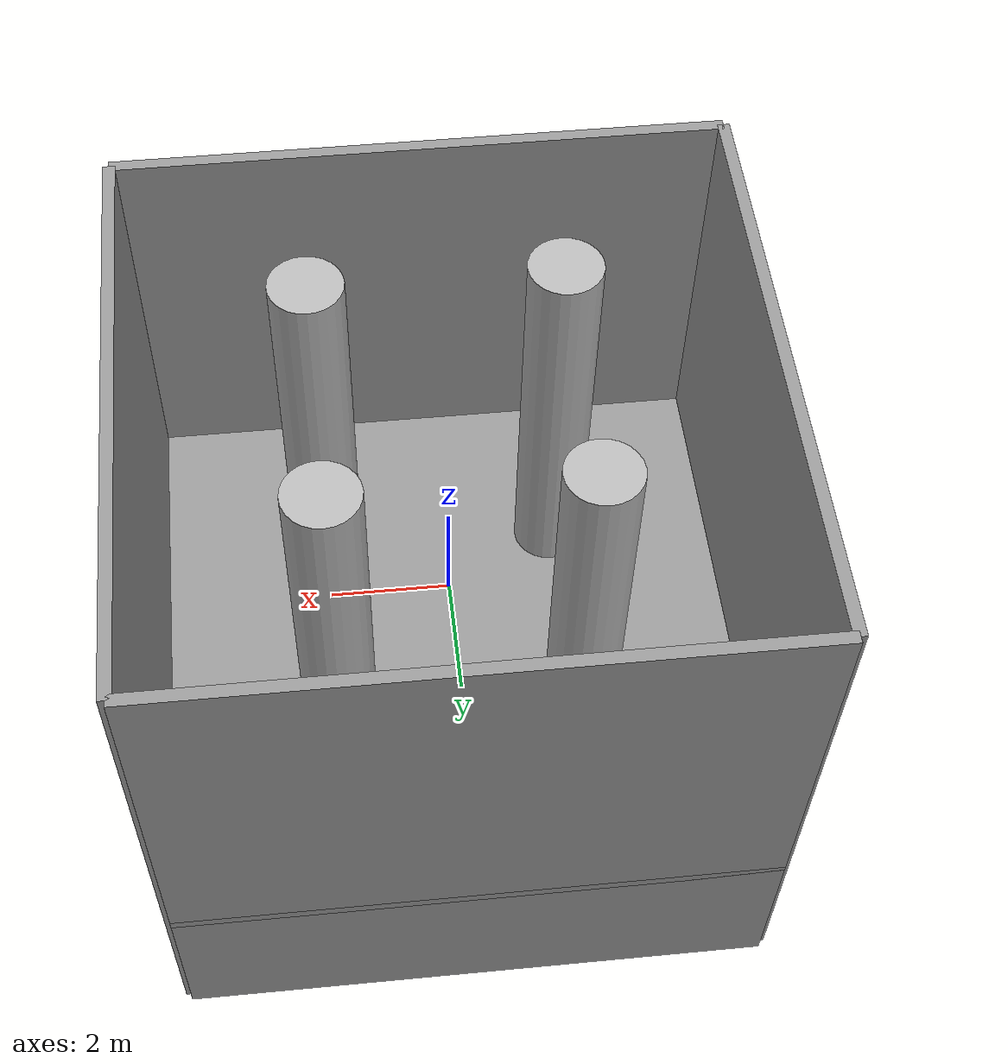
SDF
<sdf version="1.4">
 <world name="default">
  <plugin name="ros_interface_plugin" filename="librotors_gazebo_ros_interface_plugin.so"/>
  <spherical_coordinates>
   <surface_model>EARTH_WGS84</surface_model>
   <latitude_deg>47.3667</latitude_deg>
   <longitude_deg>8.5500</longitude_deg>
   <elevation>500.0</elevation>
   <heading_deg>0</heading_deg>
  </spherical_coordinates>
  <physics type="ode">
   <ode>
    <solver><type>quick</type><iters>1000</iters><sor>1.3</sor></solver>
    <constraints>
     <cfm>0</cfm>
     <erp>0.2</erp>
     <contact_max_correcting_vel>100</contact_max_correcting_vel>
     <contact_surface_layer>0.001</contact_surface_layer>
    </constraints>
   </ode>
   <max_step_size>0.01</max_step_size>
   <real_time_factor>1</real_time_factor>
   <real_time_update_rate>100</real_time_update_rate>
   <gravity>0 0 -9.8</gravity>
  </physics>
  <light type="directional" name="sun1">
   <pose>50 0 150 0 0 0</pose>
   <diffuse>1 1 1 1</diffuse>
   <specular>.1 .1 .1 1</specular>
   <direction>0.3 0.3 -1</direction>
   <cast_shadows>false</cast_shadows>
  </light>
  <light type="directional" name="sun_diffuse">
   <pose>-50 0 -150 0 0 0</pose>
   <diffuse>0.6 0.6 0.6 1</diffuse>
   <specular>0 0 0 1</specular>
   <direction>-0.3 -0.3 -1</direction>
   <cast_shadows>false</cast_shadows>
  </light>
  <scene>
   <ambient>0.01 0.01 0.01 1.0</ambient>
   <sky><clouds><speed>12</speed></clouds></sky>
   <shadows>1</shadows>
   <fog>
    <color>0.1 0.2 0.3 1.0</color>
    <type>linear</type>
    <density>0.1</density>
    <start>10</start>
    <end>40</end>
   </fog>
  </scene>
  <include><uri>model://grey_wall</uri><pose>0 -5.0 -1.0 0 0 0</pose><name>grey_wall_0</name></include>
  <include><uri>model://grey_wall</uri><pose>0 5.0 -1.0 0 0 0</pose><name>grey_wall_1</name></include>
  <include>
   <uri>model://grey_wall</uri>
   <pose>-5.0 0.0 -1.0 0 0 1.57079632679</pose>
   <name>grey_wall_2</name>
  </include>
  <include>
   <uri>model://grey_wall</uri>
   <pose>5.0 0.0 -1.0 0 0 1.57079632679</pose>
   <name>grey_wall_3</name>
  </include>
  <include>
   <uri>model://grey_wall</uri>
   <pose>0.0 1.5 -1.5 1.57079632679 0 0</pose>
   <name>grey_wall_4</name>
  </include>
  <include><uri>model://obstacle_1</uri><pose>2.0 2.0 2. 0.0 0 0</pose><name>obstacle_1</name></include>
  <include><uri>model://obstacle_1</uri><pose>-2.0 -2.0 2. 0.0 0 0</pose><name>obstacle_2</name></include>
  <include><uri>model://obstacle_1</uri><pose>2.0 -2.0 2. 0.0 0 0</pose><name>obstacle_3</name></include>
  <include><uri>model://obstacle_1</uri><pose>-2.0 2.0 2. 0.0 0 0</pose><name>obstacle_4</name></include>
  <plugin name="underwater_current_plugin" filename="libuuv_underwater_current_ros_plugin.so">
   <namespace>hydrodynamics</namespace>
   <constant_current>
    <topic>current_velocity</topic>
    <velocity><mean>0</mean><min>0</min><max>5</max><mu>0.0</mu><noiseAmp>0.0</noiseAmp></velocity>
    <horizontal_angle>
     <mean>0</mean>
     <min>-3.141592653589793238</min>
     <max>3.141592653589793238</max>
     <mu>0.0</mu>
     <noiseAmp>0.0</noiseAmp>
    </horizontal_angle>
    <vertical_angle>
     <mean>0</mean>
     <min>-3.141592653589793238</min>
     <max>3.141592653589793238</max>
     <mu>0.0</mu>
     <noiseAmp>0.0</noiseAmp>
    </vertical_angle>
   </constant_current>
  </plugin>
  <plugin name="sc_interface" filename="libuuv_sc_ros_interface_plugin.so"/>
 </world>
</sdf>

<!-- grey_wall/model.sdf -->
<sdf version="1.5">
  <model name="grey_wall">
    <static>true</static>
    <link name="link">
      <pose>0 0 1.4 0 0 0</pose>
      <collision name="collision">
        <geometry>
          <box>
            <size>10.0 0.2 10.0</size>
          </box>
        </geometry>
      </collision>
      <visual name="visual">
        <cast_shadows>false</cast_shadows>
        <geometry>
          <box>
            <size>10.0 0.2 10.0</size>
          </box>
        </geometry>
        <material>
          <script>
            <uri>model://grey_wall/materials/scripts</uri>
            <uri>model://grey_wall/materials/textures</uri>
            <name>vrc/grey_wall</name>
          </script>
        </material>
      </visual>
    </link>
  </model>
</sdf>

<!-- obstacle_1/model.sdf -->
<sdf version="1.5">
  <model name="obstacle_1">
    <static>false</static>
    <link name="link">
      <pose>0 0 0 0 0 0</pose>
      <collision name="collision">
        <geometry>
          <cylinder>
              <radius>0.6</radius>
              <length>7.0</length>
          </cylinder>
        </geometry>
      </collision>
      <visual name="visual">
        <geometry>
          <cylinder>
              <radius>0.6</radius>
              <length>7.0</length>
          </cylinder>
        </geometry>
      </visual>
    </link>
  </model>
</sdf>
